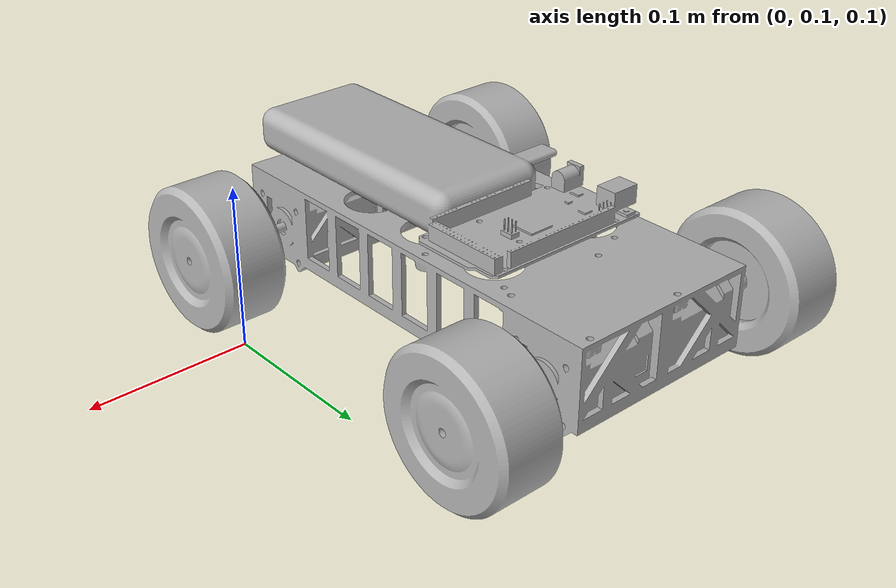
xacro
<?xml version="1.0" ?>
<robot name="omnidrone" xmlns:xacro="http://www.ros.org/wiki/xacro">

<xacro:include filename="$(find omnidrone_description)/urdf/materials.xacro" />
<xacro:include filename="$(find omnidrone_description)/urdf/omnidrone.trans" />
<xacro:include filename="$(find omnidrone_description)/urdf/omnidrone.gazebo" />
<link name="base_link">
  <inertial>
    <origin xyz="-0.0699118277356881 0.20074010794663588 0.19715855348846115" rpy="0 0 0"/>
    <mass value="5.605027829488637"/>
    <inertia ixx="0.045764" iyy="0.007926" izz="0.048806" ixy="9.6e-05" iyz="0.002743" ixz="-5.9e-05"/>
  </inertial>
  <visual>
    <origin xyz="0 0 0" rpy="0 0 0"/>
    <geometry>
      <mesh filename="file://$(find omnidrone_description)/meshes/base_link.stl" scale="0.001 0.001 0.001"/>
    </geometry>
    <material name="silver"/>
  </visual>
  <collision>
    <origin xyz="0 0 0" rpy="0 0 0"/>
    <geometry>
      <mesh filename="file://$(find omnidrone_description)/meshes/base_link.stl" scale="0.001 0.001 0.001"/>
    </geometry>
  </collision>
</link>

<link name="wheelFL_1">
  <inertial>
    <origin xyz="-0.01207740241638977 3.7844985140145226e-07 -3.3043707295399294e-07" rpy="0 0 0"/>
    <mass value="1.3143689058330494"/>
    <inertia ixx="0.001108" iyy="0.000684" izz="0.000684" ixy="-0.0" iyz="-0.0" ixz="0.0"/>
  </inertial>
  <visual>
    <origin xyz="0.156388 -0.322602 -0.180052" rpy="0 0 0"/>
    <geometry>
      <mesh filename="file://$(find omnidrone_description)/meshes/wheelFL_1.stl" scale="0.001 0.001 0.001"/>
    </geometry>
    <material name="silver"/>
  </visual>
  <collision>
    <origin xyz="0.156388 -0.322602 -0.180052" rpy="0 0 0"/>
    <geometry>
      <mesh filename="file://$(find omnidrone_description)/meshes/wheelFL_1.stl" scale="0.001 0.001 0.001"/>
    </geometry>
  </collision>
</link>

<link name="wheelFR_1">
  <inertial>
    <origin xyz="0.012077482726142565 3.7844985140145226e-07 -3.3043707295399294e-07" rpy="0 0 0"/>
    <mass value="1.3143689058330494"/>
    <inertia ixx="0.001108" iyy="0.000684" izz="0.000684" ixy="0.0" iyz="-0.0" ixz="-0.0"/>
  </inertial>
  <visual>
    <origin xyz="-0.015612 -0.322602 -0.180052" rpy="0 0 0"/>
    <geometry>
      <mesh filename="file://$(find omnidrone_description)/meshes/wheelFR_1.stl" scale="0.001 0.001 0.001"/>
    </geometry>
    <material name="silver"/>
  </visual>
  <collision>
    <origin xyz="-0.015612 -0.322602 -0.180052" rpy="0 0 0"/>
    <geometry>
      <mesh filename="file://$(find omnidrone_description)/meshes/wheelFR_1.stl" scale="0.001 0.001 0.001"/>
    </geometry>
  </collision>
</link>

<link name="wheelRR_4">
  <inertial>
    <origin xyz="0.012077482726142565 3.7844985083246296e-07 -3.3043707237112585e-07" rpy="0 0 0"/>
    <mass value="1.3143689058330494"/>
    <inertia ixx="0.001108" iyy="0.000684" izz="0.000684" ixy="0.0" iyz="0.0" ixz="-0.0"/>
  </inertial>
  <visual>
    <origin xyz="-0.015612 -0.122602 -0.180052" rpy="0 0 0"/>
    <geometry>
      <mesh filename="file://$(find omnidrone_description)/meshes/wheelRR_4.stl" scale="0.001 0.001 0.001"/>
    </geometry>
    <material name="silver"/>
  </visual>
  <collision>
    <origin xyz="-0.015612 -0.122602 -0.180052" rpy="0 0 0"/>
    <geometry>
      <mesh filename="file://$(find omnidrone_description)/meshes/wheelRR_4.stl" scale="0.001 0.001 0.001"/>
    </geometry>
  </collision>
</link>

<link name="wheelRL_1">
  <inertial>
    <origin xyz="-0.012077402416388883 3.7844985083246296e-07 -3.304370723988814e-07" rpy="0 0 0"/>
    <mass value="1.3143689058330494"/>
    <inertia ixx="0.001108" iyy="0.000684" izz="0.000684" ixy="0.0" iyz="0.0" ixz="0.0"/>
  </inertial>
  <visual>
    <origin xyz="0.156388 -0.122602 -0.180052" rpy="0 0 0"/>
    <geometry>
      <mesh filename="file://$(find omnidrone_description)/meshes/wheelRL_1.stl" scale="0.001 0.001 0.001"/>
    </geometry>
    <material name="silver"/>
  </visual>
  <collision>
    <origin xyz="0.156388 -0.122602 -0.180052" rpy="0 0 0"/>
    <geometry>
      <mesh filename="file://$(find omnidrone_description)/meshes/wheelRL_1.stl" scale="0.001 0.001 0.001"/>
    </geometry>
  </collision>
</link>

<joint name="Revolute 1" type="continuous">
  <origin xyz="-0.156388 0.322602 0.180052" rpy="0 0 0"/>
  <parent link="base_link"/>
  <child link="wheelFL_1"/>
  <axis xyz="-1.0 -0.0 -0.0"/>
  <dynamics damping="0.5" friction="0.5" />
</joint>

<joint name="Revolute 2" type="continuous">
  <origin xyz="0.015612 0.322602 0.180052" rpy="0 0 0"/>
  <parent link="base_link"/>
  <child link="wheelFR_1"/>
  <axis xyz="1.0 -0.0 -0.0"/>
  <dynamics damping="0.5" friction="0.5" />
</joint>

<joint name="Revolute 3" type="continuous">
  <origin xyz="0.015612 0.122602 0.180052" rpy="0 0 0"/>
  <parent link="base_link"/>
  <child link="wheelRR_4"/>
  <axis xyz="1.0 -0.0 -0.0"/>
  <dynamics damping="0.5" friction="0.5" />
</joint>

<joint name="Revolute 4" type="continuous">
  <origin xyz="-0.156388 0.122602 0.180052" rpy="0 0 0"/>
  <parent link="base_link"/>
  <child link="wheelRL_1"/>
  <axis xyz="-1.0 -0.0 -0.0"/>
  <dynamics damping="0.5" friction="0.5" />
</joint>

</robot>

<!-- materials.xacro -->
<robot name="omnidrone" xmlns:xacro="http://www.ros.org/wiki/xacro" >

<material name="silver">
  <color rgba="0.700 0.700 0.700 1.000"/>
</material>

</robot>

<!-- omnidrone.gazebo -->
<robot name="omnidrone" xmlns:xacro="http://www.ros.org/wiki/xacro" >

<xacro:property name="body_color" value="Gazebo/Silver" />

 <gazebo>
    <plugin name="object_controller" filename="libgazebo_ros_planar_move.so">
      <ros>
        <remapping>odom:=odom/unfiltered</remapping>
      </ros>
      <command_topic>cmd_vel</command_topic>
      <odometry_topic>odom/unfiltered</odometry_topic>
      <odometry_frame>odom</odometry_frame>
      <odometry_rate>20.0</odometry_rate>
      <robot_base_frame>base_footprint</robot_base_frame>
      <publish_odom>true</publish_odom>
      <publish_odom_tf>false</publish_odom_tf>
    </plugin>
  </gazebo>

<gazebo>
    <plugin name="joint_state_publisher" filename="libgazebo_ros_joint_state_publisher.so">
        <robotNamespace>/askar</robotNamespace>
        <alwaysOn>true</alwaysOn>
        <updateRate>50.0</updateRate>
    </plugin>
</gazebo>

<gazebo reference="base_link">
  <material>${body_color}</material>
  <mu1>0.2</mu1>
  <mu2>0.2</mu2>
  <self_collide>true</self_collide>
  <gravity>true</gravity>
</gazebo>

<gazebo reference="wheelFL_1">
  <material>${body_color}</material>
  <mu1>0.2</mu1>
  <mu2>0.2</mu2>
  <self_collide>true</self_collide>
</gazebo>

<gazebo reference="wheelFR_1">
  <material>${body_color}</material>
  <mu1>0.2</mu1>
  <mu2>0.2</mu2>
  <self_collide>true</self_collide>
</gazebo>

<gazebo reference="wheelRR_4">
  <material>${body_color}</material>
  <mu1>0.2</mu1>
  <mu2>0.2</mu2>
  <self_collide>true</self_collide>
</gazebo>

<gazebo reference="wheelRL_1">
  <material>${body_color}</material>
  <mu1>0.2</mu1>
  <mu2>0.2</mu2>
  <self_collide>true</self_collide>
</gazebo>

</robot>
